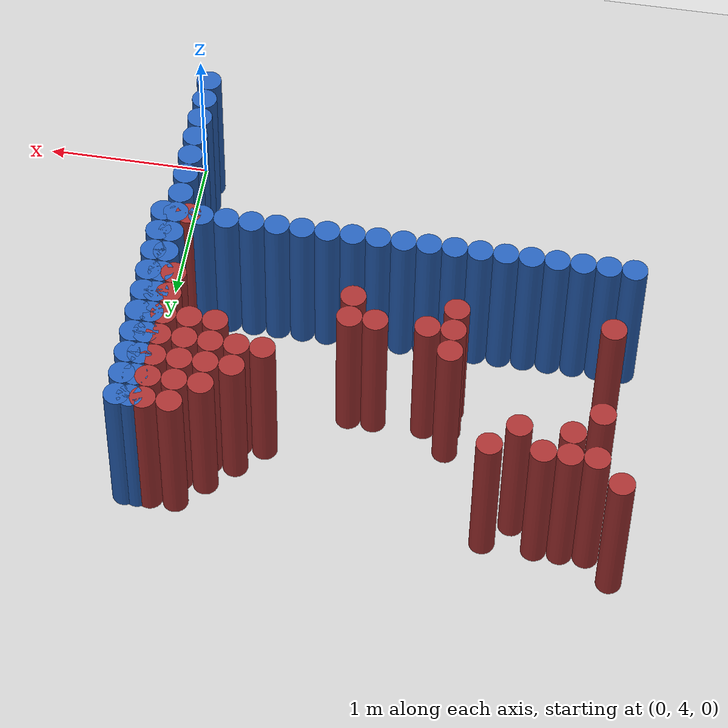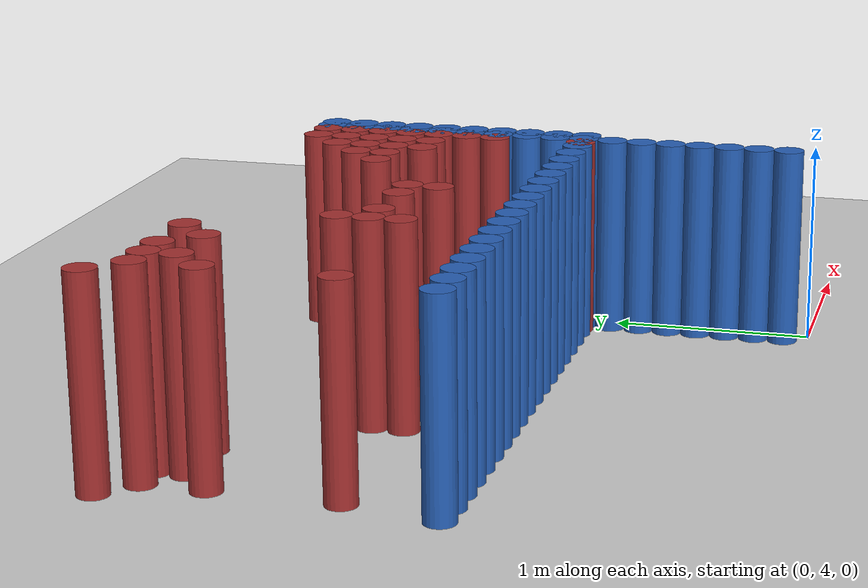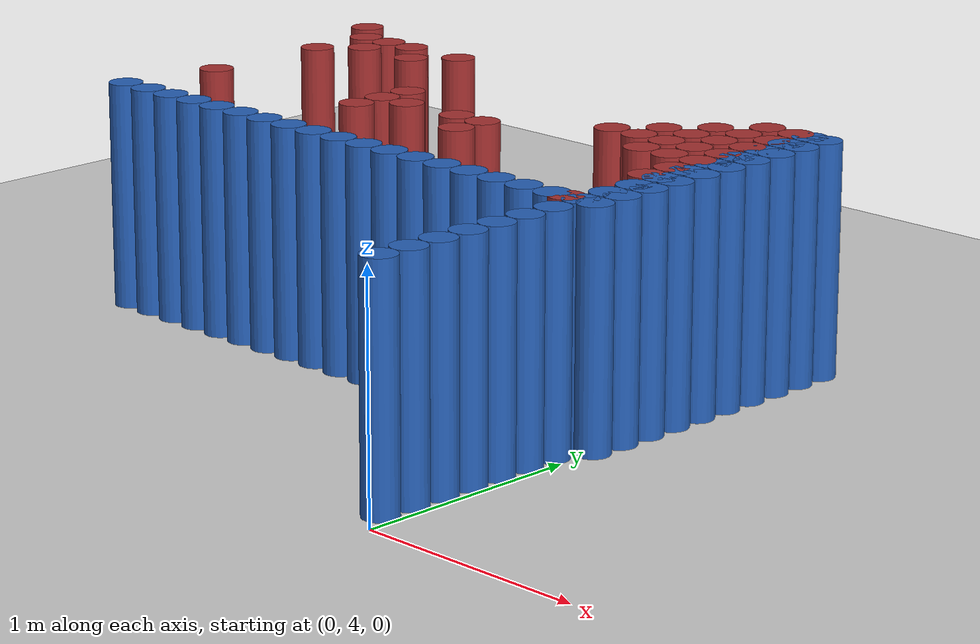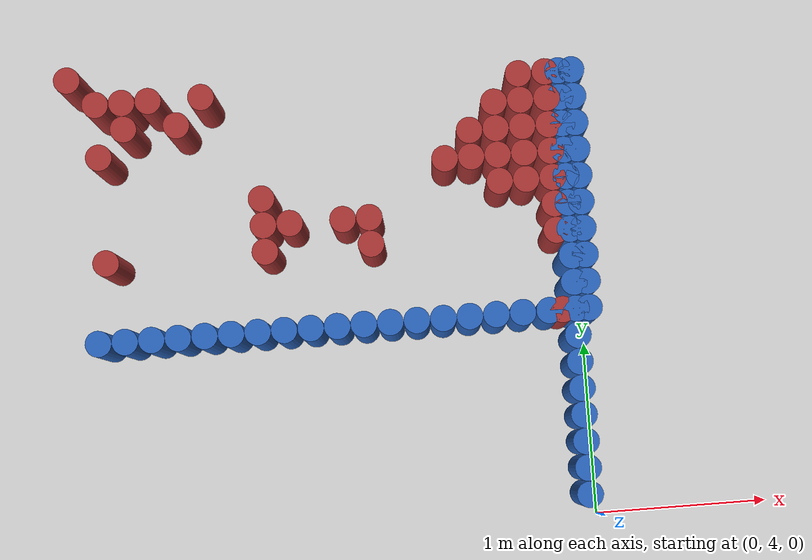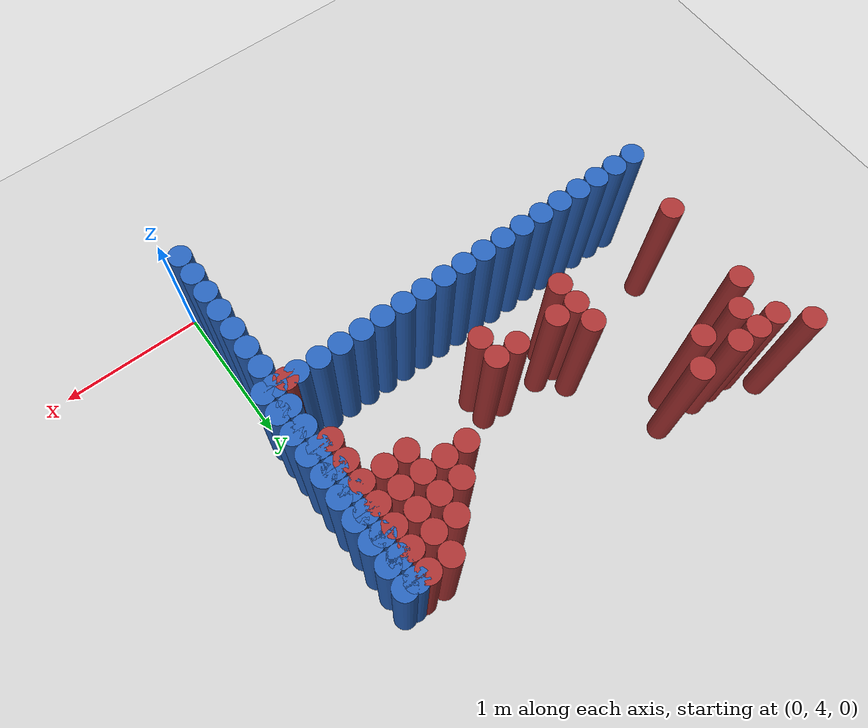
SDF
<sdf version="1.6">
 <world name="barn_world">
  <model name="ground_plane">
   <static>1</static>
   <link name="link">
    <collision name="collision">
     <geometry><plane><normal>0 0 1</normal><size>100 100</size></plane></geometry>
    </collision>
    <visual name="visual">
     <geometry><plane><normal>0 0 1</normal><size>100 100</size></plane></geometry>
     <material>
      <script><uri>file://media/materials/scripts/gazebo.material</uri><name>Gazebo/Grey</name></script>
     </material>
    </visual>
   </link>
  </model>
  <model name="unit_cylinder_82">
   <static>1</static>
   <pose>-0.0750 4.1250 0.5 0 0 0</pose>
   <link name="link">
    <collision name="collision">
     <geometry><cylinder><radius>0.075</radius><length>1</length></cylinder></geometry>
    </collision>
    <visual name="visual">
     <geometry><cylinder><radius>0.075</radius><length>1</length></cylinder></geometry>
     <material><ambient>0.152 0.379 0.72 1</ambient><diffuse>0.152 0.379 0.72 1</diffuse></material>
    </visual>
   </link>
  </model>
  <model name="unit_cylinder_84">
   <static>1</static>
   <pose>-0.0750 4.2750 0.5 0 0 0</pose>
   <link name="link">
    <collision name="collision">
     <geometry><cylinder><radius>0.075</radius><length>1</length></cylinder></geometry>
    </collision>
    <visual name="visual">
     <geometry><cylinder><radius>0.075</radius><length>1</length></cylinder></geometry>
     <material><ambient>0.152 0.379 0.72 1</ambient><diffuse>0.152 0.379 0.72 1</diffuse></material>
    </visual>
   </link>
  </model>
  <model name="unit_cylinder_86">
   <static>1</static>
   <pose>-0.0750 4.4250 0.5 0 0 0</pose>
   <link name="link">
    <collision name="collision">
     <geometry><cylinder><radius>0.075</radius><length>1</length></cylinder></geometry>
    </collision>
    <visual name="visual">
     <geometry><cylinder><radius>0.075</radius><length>1</length></cylinder></geometry>
     <material><ambient>0.152 0.379 0.72 1</ambient><diffuse>0.152 0.379 0.72 1</diffuse></material>
    </visual>
   </link>
  </model>
  <model name="unit_cylinder_88">
   <static>1</static>
   <pose>-0.0750 4.5750 0.5 0 0 0</pose>
   <link name="link">
    <collision name="collision">
     <geometry><cylinder><radius>0.075</radius><length>1</length></cylinder></geometry>
    </collision>
    <visual name="visual">
     <geometry><cylinder><radius>0.075</radius><length>1</length></cylinder></geometry>
     <material><ambient>0.152 0.379 0.72 1</ambient><diffuse>0.152 0.379 0.72 1</diffuse></material>
    </visual>
   </link>
  </model>
  <model name="unit_cylinder_90">
   <static>1</static>
   <pose>-0.0750 4.7250 0.5 0 0 0</pose>
   <link name="link">
    <collision name="collision">
     <geometry><cylinder><radius>0.075</radius><length>1</length></cylinder></geometry>
    </collision>
    <visual name="visual">
     <geometry><cylinder><radius>0.075</radius><length>1</length></cylinder></geometry>
     <material><ambient>0.152 0.379 0.72 1</ambient><diffuse>0.152 0.379 0.72 1</diffuse></material>
    </visual>
   </link>
  </model>
  <model name="unit_cylinder_92">
   <static>1</static>
   <pose>-0.0750 4.8750 0.5 0 0 0</pose>
   <link name="link">
    <collision name="collision">
     <geometry><cylinder><radius>0.075</radius><length>1</length></cylinder></geometry>
    </collision>
    <visual name="visual">
     <geometry><cylinder><radius>0.075</radius><length>1</length></cylinder></geometry>
     <material><ambient>0.152 0.379 0.72 1</ambient><diffuse>0.152 0.379 0.72 1</diffuse></material>
    </visual>
   </link>
  </model>
  <model name="unit_cylinder_94">
   <static>1</static>
   <pose>-0.0750 5.0250 0.5 0 0 0</pose>
   <link name="link">
    <collision name="collision">
     <geometry><cylinder><radius>0.075</radius><length>1</length></cylinder></geometry>
    </collision>
    <visual name="visual">
     <geometry><cylinder><radius>0.075</radius><length>1</length></cylinder></geometry>
     <material><ambient>0.152 0.379 0.72 1</ambient><diffuse>0.152 0.379 0.72 1</diffuse></material>
    </visual>
   </link>
  </model>
  <model name="unit_cylinder_96">
   <static>1</static>
   <pose>-0.0750 5.1750 0.5 0 0 0</pose>
   <link name="link">
    <collision name="collision">
     <geometry><cylinder><radius>0.075</radius><length>1</length></cylinder></geometry>
    </collision>
    <visual name="visual">
     <geometry><cylinder><radius>0.075</radius><length>1</length></cylinder></geometry>
     <material><ambient>0.152 0.379 0.72 1</ambient><diffuse>0.152 0.379 0.72 1</diffuse></material>
    </visual>
   </link>
  </model>
  <model name="unit_cylinder_97">
   <static>1</static>
   <pose>-0.2250 5.1750 0.5 0 0 0</pose>
   <link name="link">
    <collision name="collision">
     <geometry><cylinder><radius>0.075</radius><length>1</length></cylinder></geometry>
    </collision>
    <visual name="visual">
     <geometry><cylinder><radius>0.075</radius><length>1</length></cylinder></geometry>
     <material><ambient>0.152 0.379 0.72 1</ambient><diffuse>0.152 0.379 0.72 1</diffuse></material>
    </visual>
   </link>
  </model>
  <model name="unit_cylinder_98">
   <static>1</static>
   <pose>-0.3750 5.1750 0.5 0 0 0</pose>
   <link name="link">
    <collision name="collision">
     <geometry><cylinder><radius>0.075</radius><length>1</length></cylinder></geometry>
    </collision>
    <visual name="visual">
     <geometry><cylinder><radius>0.075</radius><length>1</length></cylinder></geometry>
     <material><ambient>0.152 0.379 0.72 1</ambient><diffuse>0.152 0.379 0.72 1</diffuse></material>
    </visual>
   </link>
  </model>
  <model name="unit_cylinder_99">
   <static>1</static>
   <pose>-0.5250 5.1750 0.5 0 0 0</pose>
   <link name="link">
    <collision name="collision">
     <geometry><cylinder><radius>0.075</radius><length>1</length></cylinder></geometry>
    </collision>
    <visual name="visual">
     <geometry><cylinder><radius>0.075</radius><length>1</length></cylinder></geometry>
     <material><ambient>0.152 0.379 0.72 1</ambient><diffuse>0.152 0.379 0.72 1</diffuse></material>
    </visual>
   </link>
  </model>
  <model name="unit_cylinder_100">
   <static>1</static>
   <pose>-0.6750 5.1750 0.5 0 0 0</pose>
   <link name="link">
    <collision name="collision">
     <geometry><cylinder><radius>0.075</radius><length>1</length></cylinder></geometry>
    </collision>
    <visual name="visual">
     <geometry><cylinder><radius>0.075</radius><length>1</length></cylinder></geometry>
     <material><ambient>0.152 0.379 0.72 1</ambient><diffuse>0.152 0.379 0.72 1</diffuse></material>
    </visual>
   </link>
  </model>
  <model name="unit_cylinder_101">
   <static>1</static>
   <pose>-0.8250 5.1750 0.5 0 0 0</pose>
   <link name="link">
    <collision name="collision">
     <geometry><cylinder><radius>0.075</radius><length>1</length></cylinder></geometry>
    </collision>
    <visual name="visual">
     <geometry><cylinder><radius>0.075</radius><length>1</length></cylinder></geometry>
     <material><ambient>0.152 0.379 0.72 1</ambient><diffuse>0.152 0.379 0.72 1</diffuse></material>
    </visual>
   </link>
  </model>
  <model name="unit_cylinder_102">
   <static>1</static>
   <pose>-0.9750 5.1750 0.5 0 0 0</pose>
   <link name="link">
    <collision name="collision">
     <geometry><cylinder><radius>0.075</radius><length>1</length></cylinder></geometry>
    </collision>
    <visual name="visual">
     <geometry><cylinder><radius>0.075</radius><length>1</length></cylinder></geometry>
     <material><ambient>0.152 0.379 0.72 1</ambient><diffuse>0.152 0.379 0.72 1</diffuse></material>
    </visual>
   </link>
  </model>
  <model name="unit_cylinder_103">
   <static>1</static>
   <pose>-1.1250 5.1750 0.5 0 0 0</pose>
   <link name="link">
    <collision name="collision">
     <geometry><cylinder><radius>0.075</radius><length>1</length></cylinder></geometry>
    </collision>
    <visual name="visual">
     <geometry><cylinder><radius>0.075</radius><length>1</length></cylinder></geometry>
     <material><ambient>0.152 0.379 0.72 1</ambient><diffuse>0.152 0.379 0.72 1</diffuse></material>
    </visual>
   </link>
  </model>
  <model name="unit_cylinder_104">
   <static>1</static>
   <pose>-1.2750 5.1750 0.5 0 0 0</pose>
   <link name="link">
    <collision name="collision">
     <geometry><cylinder><radius>0.075</radius><length>1</length></cylinder></geometry>
    </collision>
    <visual name="visual">
     <geometry><cylinder><radius>0.075</radius><length>1</length></cylinder></geometry>
     <material><ambient>0.152 0.379 0.72 1</ambient><diffuse>0.152 0.379 0.72 1</diffuse></material>
    </visual>
   </link>
  </model>
  <model name="unit_cylinder_105">
   <static>1</static>
   <pose>-1.4250 5.1750 0.5 0 0 0</pose>
   <link name="link">
    <collision name="collision">
     <geometry><cylinder><radius>0.075</radius><length>1</length></cylinder></geometry>
    </collision>
    <visual name="visual">
     <geometry><cylinder><radius>0.075</radius><length>1</length></cylinder></geometry>
     <material><ambient>0.152 0.379 0.72 1</ambient><diffuse>0.152 0.379 0.72 1</diffuse></material>
    </visual>
   </link>
  </model>
  <model name="unit_cylinder_106">
   <static>1</static>
   <pose>-1.5750 5.1750 0.5 0 0 0</pose>
   <link name="link">
    <collision name="collision">
     <geometry><cylinder><radius>0.075</radius><length>1</length></cylinder></geometry>
    </collision>
    <visual name="visual">
     <geometry><cylinder><radius>0.075</radius><length>1</length></cylinder></geometry>
     <material><ambient>0.152 0.379 0.72 1</ambient><diffuse>0.152 0.379 0.72 1</diffuse></material>
    </visual>
   </link>
  </model>
  <model name="unit_cylinder_107">
   <static>1</static>
   <pose>-1.7250 5.1750 0.5 0 0 0</pose>
   <link name="link">
    <collision name="collision">
     <geometry><cylinder><radius>0.075</radius><length>1</length></cylinder></geometry>
    </collision>
    <visual name="visual">
     <geometry><cylinder><radius>0.075</radius><length>1</length></cylinder></geometry>
     <material><ambient>0.152 0.379 0.72 1</ambient><diffuse>0.152 0.379 0.72 1</diffuse></material>
    </visual>
   </link>
  </model>
  <model name="unit_cylinder_108">
   <static>1</static>
   <pose>-1.8750 5.1750 0.5 0 0 0</pose>
   <link name="link">
    <collision name="collision">
     <geometry><cylinder><radius>0.075</radius><length>1</length></cylinder></geometry>
    </collision>
    <visual name="visual">
     <geometry><cylinder><radius>0.075</radius><length>1</length></cylinder></geometry>
     <material><ambient>0.152 0.379 0.72 1</ambient><diffuse>0.152 0.379 0.72 1</diffuse></material>
    </visual>
   </link>
  </model>
  <model name="unit_cylinder_109">
   <static>1</static>
   <pose>-2.0250 5.1750 0.5 0 0 0</pose>
   <link name="link">
    <collision name="collision">
     <geometry><cylinder><radius>0.075</radius><length>1</length></cylinder></geometry>
    </collision>
    <visual name="visual">
     <geometry><cylinder><radius>0.075</radius><length>1</length></cylinder></geometry>
     <material><ambient>0.152 0.379 0.72 1</ambient><diffuse>0.152 0.379 0.72 1</diffuse></material>
    </visual>
   </link>
  </model>
  <model name="unit_cylinder_110">
   <static>1</static>
   <pose>-2.1750 5.1750 0.5 0 0 0</pose>
   <link name="link">
    <collision name="collision">
     <geometry><cylinder><radius>0.075</radius><length>1</length></cylinder></geometry>
    </collision>
    <visual name="visual">
     <geometry><cylinder><radius>0.075</radius><length>1</length></cylinder></geometry>
     <material><ambient>0.152 0.379 0.72 1</ambient><diffuse>0.152 0.379 0.72 1</diffuse></material>
    </visual>
   </link>
  </model>
  <model name="unit_cylinder_111">
   <static>1</static>
   <pose>-2.3250 5.1750 0.5 0 0 0</pose>
   <link name="link">
    <collision name="collision">
     <geometry><cylinder><radius>0.075</radius><length>1</length></cylinder></geometry>
    </collision>
    <visual name="visual">
     <geometry><cylinder><radius>0.075</radius><length>1</length></cylinder></geometry>
     <material><ambient>0.152 0.379 0.72 1</ambient><diffuse>0.152 0.379 0.72 1</diffuse></material>
    </visual>
   </link>
  </model>
  <model name="unit_cylinder_112">
   <static>1</static>
   <pose>-2.4750 5.1750 0.5 0 0 0</pose>
   <link name="link">
    <collision name="collision">
     <geometry><cylinder><radius>0.075</radius><length>1</length></cylinder></geometry>
    </collision>
    <visual name="visual">
     <geometry><cylinder><radius>0.075</radius><length>1</length></cylinder></geometry>
     <material><ambient>0.152 0.379 0.72 1</ambient><diffuse>0.152 0.379 0.72 1</diffuse></material>
    </visual>
   </link>
  </model>
  <model name="unit_cylinder_113">
   <static>1</static>
   <pose>-2.6250 5.1750 0.5 0 0 0</pose>
   <link name="link">
    <collision name="collision">
     <geometry><cylinder><radius>0.075</radius><length>1</length></cylinder></geometry>
    </collision>
    <visual name="visual">
     <geometry><cylinder><radius>0.075</radius><length>1</length></cylinder></geometry>
     <material><ambient>0.152 0.379 0.72 1</ambient><diffuse>0.152 0.379 0.72 1</diffuse></material>
    </visual>
   </link>
  </model>
  <model name="unit_cylinder_114">
   <static>1</static>
   <pose>-2.7750 5.1750 0.5 0 0 0</pose>
   <link name="link">
    <collision name="collision">
     <geometry><cylinder><radius>0.075</radius><length>1</length></cylinder></geometry>
    </collision>
    <visual name="visual">
     <geometry><cylinder><radius>0.075</radius><length>1</length></cylinder></geometry>
     <material><ambient>0.152 0.379 0.72 1</ambient><diffuse>0.152 0.379 0.72 1</diffuse></material>
    </visual>
   </link>
  </model>
  <model name="unit_cylinder_243">
   <static>1</static>
   <pose>-2.8500 6.6750 0.5 0 0 0</pose>
   <link name="link">
    <collision name="collision">
     <geometry><cylinder><radius>0.075</radius><length>1</length></cylinder></geometry>
    </collision>
    <visual name="visual">
     <geometry><cylinder><radius>0.075</radius><length>1</length></cylinder></geometry>
     <material><ambient>0.648 0.192 0.192 1</ambient><diffuse>0.648 0.192 0.192 1</diffuse></material>
    </visual>
   </link>
  </model>
  <model name="unit_cylinder_249">
   <static>1</static>
   <pose>-2.7000 5.6250 0.5 0 0 0</pose>
   <link name="link">
    <collision name="collision">
     <geometry><cylinder><radius>0.075</radius><length>1</length></cylinder></geometry>
    </collision>
    <visual name="visual">
     <geometry><cylinder><radius>0.075</radius><length>1</length></cylinder></geometry>
     <material><ambient>0.648 0.192 0.192 1</ambient><diffuse>0.648 0.192 0.192 1</diffuse></material>
    </visual>
   </link>
  </model>
  <model name="unit_cylinder_250">
   <static>1</static>
   <pose>-2.7000 6.2250 0.5 0 0 0</pose>
   <link name="link">
    <collision name="collision">
     <geometry><cylinder><radius>0.075</radius><length>1</length></cylinder></geometry>
    </collision>
    <visual name="visual">
     <geometry><cylinder><radius>0.075</radius><length>1</length></cylinder></geometry>
     <material><ambient>0.648 0.192 0.192 1</ambient><diffuse>0.648 0.192 0.192 1</diffuse></material>
    </visual>
   </link>
  </model>
  <model name="unit_cylinder_251">
   <static>1</static>
   <pose>-2.7000 6.5250 0.5 0 0 0</pose>
   <link name="link">
    <collision name="collision">
     <geometry><cylinder><radius>0.075</radius><length>1</length></cylinder></geometry>
    </collision>
    <visual name="visual">
     <geometry><cylinder><radius>0.075</radius><length>1</length></cylinder></geometry>
     <material><ambient>0.648 0.192 0.192 1</ambient><diffuse>0.648 0.192 0.192 1</diffuse></material>
    </visual>
   </link>
  </model>
  <model name="unit_cylinder_257">
   <static>1</static>
   <pose>-2.5500 6.3750 0.5 0 0 0</pose>
   <link name="link">
    <collision name="collision">
     <geometry><cylinder><radius>0.075</radius><length>1</length></cylinder></geometry>
    </collision>
    <visual name="visual">
     <geometry><cylinder><radius>0.075</radius><length>1</length></cylinder></geometry>
     <material><ambient>0.648 0.192 0.192 1</ambient><diffuse>0.648 0.192 0.192 1</diffuse></material>
    </visual>
   </link>
  </model>
  <model name="unit_cylinder_258">
   <static>1</static>
   <pose>-2.5500 6.5250 0.5 0 0 0</pose>
   <link name="link">
    <collision name="collision">
     <geometry><cylinder><radius>0.075</radius><length>1</length></cylinder></geometry>
    </collision>
    <visual name="visual">
     <geometry><cylinder><radius>0.075</radius><length>1</length></cylinder></geometry>
     <material><ambient>0.648 0.192 0.192 1</ambient><diffuse>0.648 0.192 0.192 1</diffuse></material>
    </visual>
   </link>
  </model>
  <model name="unit_cylinder_265">
   <static>1</static>
   <pose>-2.4000 6.5250 0.5 0 0 0</pose>
   <link name="link">
    <collision name="collision">
     <geometry><cylinder><radius>0.075</radius><length>1</length></cylinder></geometry>
    </collision>
    <visual name="visual">
     <geometry><cylinder><radius>0.075</radius><length>1</length></cylinder></geometry>
     <material><ambient>0.648 0.192 0.192 1</ambient><diffuse>0.648 0.192 0.192 1</diffuse></material>
    </visual>
   </link>
  </model>
  <model name="unit_cylinder_271">
   <static>1</static>
   <pose>-2.2500 6.3750 0.5 0 0 0</pose>
   <link name="link">
    <collision name="collision">
     <geometry><cylinder><radius>0.075</radius><length>1</length></cylinder></geometry>
    </collision>
    <visual name="visual">
     <geometry><cylinder><radius>0.075</radius><length>1</length></cylinder></geometry>
     <material><ambient>0.648 0.192 0.192 1</ambient><diffuse>0.648 0.192 0.192 1</diffuse></material>
    </visual>
   </link>
  </model>
  <model name="unit_cylinder_276">
   <static>1</static>
   <pose>-2.1000 6.5250 0.5 0 0 0</pose>
   <link name="link">
    <collision name="collision">
     <geometry><cylinder><radius>0.075</radius><length>1</length></cylinder></geometry>
    </collision>
    <visual name="visual">
     <geometry><cylinder><radius>0.075</radius><length>1</length></cylinder></geometry>
     <material><ambient>0.648 0.192 0.192 1</ambient><diffuse>0.648 0.192 0.192 1</diffuse></material>
    </visual>
   </link>
  </model>
  <model name="unit_cylinder_288">
   <static>1</static>
   <pose>-1.8000 5.6250 0.5 0 0 0</pose>
   <link name="link">
    <collision name="collision">
     <geometry><cylinder><radius>0.075</radius><length>1</length></cylinder></geometry>
    </collision>
    <visual name="visual">
     <geometry><cylinder><radius>0.075</radius><length>1</length></cylinder></geometry>
     <material><ambient>0.648 0.192 0.192 1</ambient><diffuse>0.648 0.192 0.192 1</diffuse></material>
    </visual>
   </link>
  </model>
  <model name="unit_cylinder_289">
   <static>1</static>
   <pose>-1.8000 5.7750 0.5 0 0 0</pose>
   <link name="link">
    <collision name="collision">
     <geometry><cylinder><radius>0.075</radius><length>1</length></cylinder></geometry>
    </collision>
    <visual name="visual">
     <geometry><cylinder><radius>0.075</radius><length>1</length></cylinder></geometry>
     <material><ambient>0.648 0.192 0.192 1</ambient><diffuse>0.648 0.192 0.192 1</diffuse></material>
    </visual>
   </link>
  </model>
  <model name="unit_cylinder_290">
   <static>1</static>
   <pose>-1.8000 5.9250 0.5 0 0 0</pose>
   <link name="link">
    <collision name="collision">
     <geometry><cylinder><radius>0.075</radius><length>1</length></cylinder></geometry>
    </collision>
    <visual name="visual">
     <geometry><cylinder><radius>0.075</radius><length>1</length></cylinder></geometry>
     <material><ambient>0.648 0.192 0.192 1</ambient><diffuse>0.648 0.192 0.192 1</diffuse></material>
    </visual>
   </link>
  </model>
  <model name="unit_cylinder_295">
   <static>1</static>
   <pose>-1.6500 5.7750 0.5 0 0 0</pose>
   <link name="link">
    <collision name="collision">
     <geometry><cylinder><radius>0.075</radius><length>1</length></cylinder></geometry>
    </collision>
    <visual name="visual">
     <geometry><cylinder><radius>0.075</radius><length>1</length></cylinder></geometry>
     <material><ambient>0.648 0.192 0.192 1</ambient><diffuse>0.648 0.192 0.192 1</diffuse></material>
    </visual>
   </link>
  </model>
  <model name="unit_cylinder_305">
   <static>1</static>
   <pose>-1.3500 5.7750 0.5 0 0 0</pose>
   <link name="link">
    <collision name="collision">
     <geometry><cylinder><radius>0.075</radius><length>1</length></cylinder></geometry>
    </collision>
    <visual name="visual">
     <geometry><cylinder><radius>0.075</radius><length>1</length></cylinder></geometry>
     <material><ambient>0.648 0.192 0.192 1</ambient><diffuse>0.648 0.192 0.192 1</diffuse></material>
    </visual>
   </link>
  </model>
  <model name="unit_cylinder_314">
   <static>1</static>
   <pose>-1.2000 5.6250 0.5 0 0 0</pose>
   <link name="link">
    <collision name="collision">
     <geometry><cylinder><radius>0.075</radius><length>1</length></cylinder></geometry>
    </collision>
    <visual name="visual">
     <geometry><cylinder><radius>0.075</radius><length>1</length></cylinder></geometry>
     <material><ambient>0.648 0.192 0.192 1</ambient><diffuse>0.648 0.192 0.192 1</diffuse></material>
    </visual>
   </link>
  </model>
  <model name="unit_cylinder_315">
   <static>1</static>
   <pose>-1.2000 5.7750 0.5 0 0 0</pose>
   <link name="link">
    <collision name="collision">
     <geometry><cylinder><radius>0.075</radius><length>1</length></cylinder></geometry>
    </collision>
    <visual name="visual">
     <geometry><cylinder><radius>0.075</radius><length>1</length></cylinder></geometry>
     <material><ambient>0.648 0.192 0.192 1</ambient><diffuse>0.648 0.192 0.192 1</diffuse></material>
    </visual>
   </link>
  </model>
  <model name="unit_cylinder_328">
   <static>1</static>
   <pose>-0.7500 6.0750 0.5 0 0 0</pose>
   <link name="link">
    <collision name="collision">
     <geometry><cylinder><radius>0.075</radius><length>1</length></cylinder></geometry>
    </collision>
    <visual name="visual">
     <geometry><cylinder><radius>0.075</radius><length>1</length></cylinder></geometry>
     <material><ambient>0.648 0.192 0.192 1</ambient><diffuse>0.648 0.192 0.192 1</diffuse></material>
    </visual>
   </link>
  </model>
  <model name="unit_cylinder_331">
   <static>1</static>
   <pose>-0.6000 6.0750 0.5 0 0 0</pose>
   <link name="link">
    <collision name="collision">
     <geometry><cylinder><radius>0.075</radius><length>1</length></cylinder></geometry>
    </collision>
    <visual name="visual">
     <geometry><cylinder><radius>0.075</radius><length>1</length></cylinder></geometry>
     <material><ambient>0.648 0.192 0.192 1</ambient><diffuse>0.648 0.192 0.192 1</diffuse></material>
    </visual>
   </link>
  </model>
  <model name="unit_cylinder_332">
   <static>1</static>
   <pose>-0.6000 6.2250 0.5 0 0 0</pose>
   <link name="link">
    <collision name="collision">
     <geometry><cylinder><radius>0.075</radius><length>1</length></cylinder></geometry>
    </collision>
    <visual name="visual">
     <geometry><cylinder><radius>0.075</radius><length>1</length></cylinder></geometry>
     <material><ambient>0.648 0.192 0.192 1</ambient><diffuse>0.648 0.192 0.192 1</diffuse></material>
    </visual>
   </link>
  </model>
  <model name="unit_cylinder_334">
   <static>1</static>
   <pose>-0.4500 5.9250 0.5 0 0 0</pose>
   <link name="link">
    <collision name="collision">
     <geometry><cylinder><radius>0.075</radius><length>1</length></cylinder></geometry>
    </collision>
    <visual name="visual">
     <geometry><cylinder><radius>0.075</radius><length>1</length></cylinder></geometry>
     <material><ambient>0.648 0.192 0.192 1</ambient><diffuse>0.648 0.192 0.192 1</diffuse></material>
    </visual>
   </link>
  </model>
  <model name="unit_cylinder_335">
   <static>1</static>
   <pose>-0.4500 6.0750 0.5 0 0 0</pose>
   <link name="link">
    <collision name="collision">
     <geometry><cylinder><radius>0.075</radius><length>1</length></cylinder></geometry>
    </collision>
    <visual name="visual">
     <geometry><cylinder><radius>0.075</radius><length>1</length></cylinder></geometry>
     <material><ambient>0.648 0.192 0.192 1</ambient><diffuse>0.648 0.192 0.192 1</diffuse></material>
    </visual>
   </link>
  </model>
  <model name="unit_cylinder_336">
   <static>1</static>
   <pose>-0.4500 6.2250 0.5 0 0 0</pose>
   <link name="link">
    <collision name="collision">
     <geometry><cylinder><radius>0.075</radius><length>1</length></cylinder></geometry>
    </collision>
    <visual name="visual">
     <geometry><cylinder><radius>0.075</radius><length>1</length></cylinder></geometry>
     <material><ambient>0.648 0.192 0.192 1</ambient><diffuse>0.648 0.192 0.192 1</diffuse></material>
    </visual>
   </link>
  </model>
  <model name="unit_cylinder_337">
   <static>1</static>
   <pose>-0.4500 6.3750 0.5 0 0 0</pose>
   <link name="link">
    <collision name="collision">
     <geometry><cylinder><radius>0.075</radius><length>1</length></cylinder></geometry>
    </collision>
    <visual name="visual">
     <geometry><cylinder><radius>0.075</radius><length>1</length></cylinder></geometry>
     <material><ambient>0.648 0.192 0.192 1</ambient><diffuse>0.648 0.192 0.192 1</diffuse></material>
    </visual>
   </link>
  </model>
  <model name="unit_cylinder_339">
   <static>1</static>
   <pose>-0.3000 5.9250 0.5 0 0 0</pose>
   <link name="link">
    <collision name="collision">
     <geometry><cylinder><radius>0.075</radius><length>1</length></cylinder></geometry>
    </collision>
    <visual name="visual">
     <geometry><cylinder><radius>0.075</radius><length>1</length></cylinder></geometry>
     <material><ambient>0.648 0.192 0.192 1</ambient><diffuse>0.648 0.192 0.192 1</diffuse></material>
    </visual>
   </link>
  </model>
  <model name="unit_cylinder_340">
   <static>1</static>
   <pose>-0.3000 6.0750 0.5 0 0 0</pose>
   <link name="link">
    <collision name="collision">
     <geometry><cylinder><radius>0.075</radius><length>1</length></cylinder></geometry>
    </collision>
    <visual name="visual">
     <geometry><cylinder><radius>0.075</radius><length>1</length></cylinder></geometry>
     <material><ambient>0.648 0.192 0.192 1</ambient><diffuse>0.648 0.192 0.192 1</diffuse></material>
    </visual>
   </link>
  </model>
  <model name="unit_cylinder_341">
   <static>1</static>
   <pose>-0.3000 6.2250 0.5 0 0 0</pose>
   <link name="link">
    <collision name="collision">
     <geometry><cylinder><radius>0.075</radius><length>1</length></cylinder></geometry>
    </collision>
    <visual name="visual">
     <geometry><cylinder><radius>0.075</radius><length>1</length></cylinder></geometry>
     <material><ambient>0.648 0.192 0.192 1</ambient><diffuse>0.648 0.192 0.192 1</diffuse></material>
    </visual>
   </link>
  </model>
  <model name="unit_cylinder_342">
   <static>1</static>
   <pose>-0.3000 6.3750 0.5 0 0 0</pose>
   <link name="link">
    <collision name="collision">
     <geometry><cylinder><radius>0.075</radius><length>1</length></cylinder></geometry>
    </collision>
    <visual name="visual">
     <geometry><cylinder><radius>0.075</radius><length>1</length></cylinder></geometry>
     <material><ambient>0.648 0.192 0.192 1</ambient><diffuse>0.648 0.192 0.192 1</diffuse></material>
    </visual>
   </link>
  </model>
  <model name="unit_cylinder_343">
   <static>1</static>
   <pose>-0.3000 6.5250 0.5 0 0 0</pose>
   <link name="link">
    <collision name="collision">
     <geometry><cylinder><radius>0.075</radius><length>1</length></cylinder></geometry>
    </collision>
    <visual name="visual">
     <geometry><cylinder><radius>0.075</radius><length>1</length></cylinder></geometry>
     <material><ambient>0.648 0.192 0.192 1</ambient><diffuse>0.648 0.192 0.192 1</diffuse></material>
    </visual>
   </link>
  </model>
  <model name="unit_cylinder_349">
   <static>1</static>
   <pose>-0.1500 5.1750 0.5 0 0 0</pose>
   <link name="link">
    <collision name="collision">
     <geometry><cylinder><radius>0.075</radius><length>1</length></cylinder></geometry>
    </collision>
    <visual name="visual">
     <geometry><cylinder><radius>0.075</radius><length>1</length></cylinder></geometry>
     <material><ambient>0.648 0.192 0.192 1</ambient><diffuse>0.648 0.192 0.192 1</diffuse></material>
    </visual>
   </link>
  </model>
  <model name="unit_cylinder_350">
   <static>1</static>
   <pose>-0.1500 5.6250 0.5 0 0 0</pose>
   <link name="link">
    <collision name="collision">
     <geometry><cylinder><radius>0.075</radius><length>1</length></cylinder></geometry>
    </collision>
    <visual name="visual">
     <geometry><cylinder><radius>0.075</radius><length>1</length></cylinder></geometry>
     <material><ambient>0.648 0.192 0.192 1</ambient><diffuse>0.648 0.192 0.192 1</diffuse></material>
    </visual>
   </link>
  </model>
  <model name="unit_cylinder_351">
   <static>1</static>
   <pose>-0.1500 5.7750 0.5 0 0 0</pose>
   <link name="link">
    <collision name="collision">
     <geometry><cylinder><radius>0.075</radius><length>1</length></cylinder></geometry>
    </collision>
    <visual name="visual">
     <geometry><cylinder><radius>0.075</radius><length>1</length></cylinder></geometry>
     <material><ambient>0.648 0.192 0.192 1</ambient><diffuse>0.648 0.192 0.192 1</diffuse></material>
    </visual>
   </link>
  </model>
  <model name="unit_cylinder_352">
   <static>1</static>
   <pose>-0.1500 5.9250 0.5 0 0 0</pose>
   <link name="link">
    <collision name="collision">
     <geometry><cylinder><radius>0.075</radius><length>1</length></cylinder></geometry>
    </collision>
    <visual name="visual">
     <geometry><cylinder><radius>0.075</radius><length>1</length></cylinder></geometry>
     <material><ambient>0.648 0.192 0.192 1</ambient><diffuse>0.648 0.192 0.192 1</diffuse></material>
    </visual>
   </link>
  </model>
  <model name="unit_cylinder_353">
   <static>1</static>
   <pose>-0.1500 6.0750 0.5 0 0 0</pose>
   <link name="link">
    <collision name="collision">
     <geometry><cylinder><radius>0.075</radius><length>1</length></cylinder></geometry>
    </collision>
    <visual name="visual">
     <geometry><cylinder><radius>0.075</radius><length>1</length></cylinder></geometry>
     <material><ambient>0.648 0.192 0.192 1</ambient><diffuse>0.648 0.192 0.192 1</diffuse></material>
    </visual>
   </link>
  </model>
  <model name="unit_cylinder_354">
   <static>1</static>
   <pose>-0.1500 6.2250 0.5 0 0 0</pose>
   <link name="link">
    <collision name="collision">
     <geometry><cylinder><radius>0.075</radius><length>1</length></cylinder></geometry>
    </collision>
    <visual name="visual">
     <geometry><cylinder><radius>0.075</radius><length>1</length></cylinder></geometry>
     <material><ambient>0.648 0.192 0.192 1</ambient><diffuse>0.648 0.192 0.192 1</diffuse></material>
    </visual>
   </link>
  </model>
  <model name="unit_cylinder_355">
   <static>1</static>
   <pose>-0.1500 6.3750 0.5 0 0 0</pose>
   <link name="link">
    <collision name="collision">
     <geometry><cylinder><radius>0.075</radius><length>1</length></cylinder></geometry>
    </collision>
    <visual name="visual">
     <geometry><cylinder><radius>0.075</radius><length>1</length></cylinder></geometry>
     <material><ambient>0.648 0.192 0.192 1</ambient><diffuse>0.648 0.192 0.192 1</diffuse></material>
    </visual>
   </link>
  </model>
  <model name="unit_cylinder_356">
   <static>1</static>
   <pose>-0.1500 6.5250 0.5 0 0 0</pose>
   <link name="link">
    <collision name="collision">
     <geometry><cylinder><radius>0.075</radius><length>1</length></cylinder></geometry>
    </collision>
    <visual name="visual">
     <geometry><cylinder><radius>0.075</radius><length>1</length></cylinder></geometry>
     <material><ambient>0.648 0.192 0.192 1</ambient><diffuse>0.648 0.192 0.192 1</diffuse></material>
    </visual>
   </link>
  </model>
  <model name="unit_cylinder_371">
   <static>1</static>
   <pose>0.0000 5.1750 0.5 0 0 0</pose>
   <link name="link">
    <collision name="collision">
     <geometry><cylinder><radius>0.075</radius><length>1</length></cylinder></geometry>
    </collision>
    <visual name="visual">
     <geometry><cylinder><radius>0.075</radius><length>1</length></cylinder></geometry>
     <material><ambient>0.152 0.379 0.72 1</ambient><diffuse>0.152 0.379 0.72 1</diffuse></material>
    </visual>
   </link>
  </model>
  <model name="unit_cylinder_372">
   <static>1</static>
   <pose>0.0000 5.3250 0.5 0 0 0</pose>
   <link name="link">
    <collision name="collision">
     <geometry><cylinder><radius>0.075</radius><length>1</length></cylinder></geometry>
    </collision>
    <visual name="visual">
     <geometry><cylinder><radius>0.075</radius><length>1</length></cylinder></geometry>
     <material><ambient>0.152 0.379 0.72 1</ambient><diffuse>0.152 0.379 0.72 1</diffuse></material>
    </visual>
   </link>
  </model>
  <model name="unit_cylinder_373">
   <static>1</static>
   <pose>0.0000 5.4750 0.5 0 0 0</pose>
   <link name="link">
    <collision name="collision">
     <geometry><cylinder><radius>0.075</radius><length>1</length></cylinder></geometry>
    </collision>
    <visual name="visual">
     <geometry><cylinder><radius>0.075</radius><length>1</length></cylinder></geometry>
     <material><ambient>0.152 0.379 0.72 1</ambient><diffuse>0.152 0.379 0.72 1</diffuse></material>
    </visual>
   </link>
  </model>
  <model name="unit_cylinder_374">
   <static>1</static>
   <pose>0.0000 5.6250 0.5 0 0 0</pose>
   <link name="link">
    <collision name="collision">
     <geometry><cylinder><radius>0.075</radius><length>1</length></cylinder></geometry>
    </collision>
    <visual name="visual">
     <geometry><cylinder><radius>0.075</radius><length>1</length></cylinder></geometry>
     <material><ambient>0.152 0.379 0.72 1</ambient><diffuse>0.152 0.379 0.72 1</diffuse></material>
    </visual>
   </link>
  </model>
  <model name="unit_cylinder_375">
   <static>1</static>
   <pose>0.0000 5.7750 0.5 0 0 0</pose>
   <link name="link">
    <collision name="collision">
     <geometry><cylinder><radius>0.075</radius><length>1</length></cylinder></geometry>
    </collision>
    <visual name="visual">
     <geometry><cylinder><radius>0.075</radius><length>1</length></cylinder></geometry>
     <material><ambient>0.152 0.379 0.72 1</ambient><diffuse>0.152 0.379 0.72 1</diffuse></material>
    </visual>
   </link>
  </model>
  <model name="unit_cylinder_376">
   <static>1</static>
   <pose>0.0000 5.9250 0.5 0 0 0</pose>
   <link name="link">
    <collision name="collision">
     <geometry><cylinder><radius>0.075</radius><length>1</length></cylinder></geometry>
    </collision>
    <visual name="visual">
     <geometry><cylinder><radius>0.075</radius><length>1</length></cylinder></geometry>
     <material><ambient>0.152 0.379 0.72 1</ambient><diffuse>0.152 0.379 0.72 1</diffuse></material>
    </visual>
   </link>
  </model>
  <model name="unit_cylinder_377">
   <static>1</static>
   <pose>0.0000 6.0750 0.5 0 0 0</pose>
   <link name="link">
    <collision name="collision">
     <geometry><cylinder><radius>0.075</radius><length>1</length></cylinder></geometry>
    </collision>
    <visual name="visual">
     <geometry><cylinder><radius>0.075</radius><length>1</length></cylinder></geometry>
     <material><ambient>0.152 0.379 0.72 1</ambient><diffuse>0.152 0.379 0.72 1</diffuse></material>
    </visual>
   </link>
  </model>
  <model name="unit_cylinder_378">
   <static>1</static>
   <pose>0.0000 6.2250 0.5 0 0 0</pose>
   <link name="link">
    <collision name="collision">
     <geometry><cylinder><radius>0.075</radius><length>1</length></cylinder></geometry>
    </collision>
    <visual name="visual">
     <geometry><cylinder><radius>0.075</radius><length>1</length></cylinder></geometry>
     <material><ambient>0.152 0.379 0.72 1</ambient><diffuse>0.152 0.379 0.72 1</diffuse></material>
    </visual>
   </link>
  </model>
  <model name="unit_cylinder_379">
   <static>1</static>
   <pose>0.0000 6.3750 0.5 0 0 0</pose>
   <link name="link">
    <collision name="collision">
     <geometry><cylinder><radius>0.075</radius><length>1</length></cylinder></geometry>
    </collision>
    <visual name="visual">
     <geometry><cylinder><radius>0.075</radius><length>1</length></cylinder></geometry>
     <material><ambient>0.152 0.379 0.72 1</ambient><diffuse>0.152 0.379 0.72 1</diffuse></material>
    </visual>
   </link>
  </model>
  <model name="unit_cylinder_380">
   <static>1</static>
   <pose>0.0000 6.5250 0.5 0 0 0</pose>
   <link name="link">
    <collision name="collision">
     <geometry><cylinder><radius>0.075</radius><length>1</length></cylinder></geometry>
    </collision>
    <visual name="visual">
     <geometry><cylinder><radius>0.075</radius><length>1</length></cylinder></geometry>
     <material><ambient>0.152 0.379 0.72 1</ambient><diffuse>0.152 0.379 0.72 1</diffuse></material>
    </visual>
   </link>
  </model>
  <model name="unit_cylinder_431">
   <static>1</static>
   <pose>-0.0750 5.1750 0.5 0 0 0</pose>
   <link name="link">
    <collision name="collision">
     <geometry><cylinder><radius>0.075</radius><length>1</length></cylinder></geometry>
    </collision>
    <visual name="visual">
     <geometry><cylinder><radius>0.075</radius><length>1</length></cylinder></geometry>
     <material><ambient>0.152 0.379 0.72 1</ambient><diffuse>0.152 0.379 0.72 1</diffuse></material>
    </visual>
   </link>
  </model>
  <model name="unit_cylinder_433">
   <static>1</static>
   <pose>-0.0750 5.3250 0.5 0 0 0</pose>
   <link name="link">
    <collision name="collision">
     <geometry><cylinder><radius>0.075</radius><length>1</length></cylinder></geometry>
    </collision>
    <visual name="visual">
     <geometry><cylinder><radius>0.075</radius><length>1</length></cylinder></geometry>
     <material><ambient>0.152 0.379 0.72 1</ambient><diffuse>0.152 0.379 0.72 1</diffuse></material>
    </visual>
   </link>
  </model>
  <model name="unit_cylinder_435">
   <static>1</static>
   <pose>-0.0750 5.4750 0.5 0 0 0</pose>
   <link name="link">
    <collision name="collision">
     <geometry><cylinder><radius>0.075</radius><length>1</length></cylinder></geometry>
    </collision>
    <visual name="visual">
     <geometry><cylinder><radius>0.075</radius><length>1</length></cylinder></geometry>
     <material><ambient>0.152 0.379 0.72 1</ambient><diffuse>0.152 0.379 0.72 1</diffuse></material>
    </visual>
   </link>
  </model>
  <model name="unit_cylinder_437">
   <static>1</static>
   <pose>-0.0750 5.6250 0.5 0 0 0</pose>
   <link name="link">
    <collision name="collision">
     <geometry><cylinder><radius>0.075</radius><length>1</length></cylinder></geometry>
    </collision>
    <visual name="visual">
     <geometry><cylinder><radius>0.075</radius><length>1</length></cylinder></geometry>
     <material><ambient>0.152 0.379 0.72 1</ambient><diffuse>0.152 0.379 0.72 1</diffuse></material>
    </visual>
   </link>
  </model>
  <model name="unit_cylinder_439">
   <static>1</static>
   <pose>-0.0750 5.7750 0.5 0 0 0</pose>
   <link name="link">
    <collision name="collision">
     <geometry><cylinder><radius>0.075</radius><length>1</length></cylinder></geometry>
    </collision>
    <visual name="visual">
     <geometry><cylinder><radius>0.075</radius><length>1</length></cylinder></geometry>
     <material><ambient>0.152 0.379 0.72 1</ambient><diffuse>0.152 0.379 0.72 1</diffuse></material>
    </visual>
   </link>
  </model>
  <model name="unit_cylinder_441">
   <static>1</static>
   <pose>-0.0750 5.9250 0.5 0 0 0</pose>
   <link name="link">
    <collision name="collision">
     <geometry><cylinder><radius>0.075</radius><length>1</length></cylinder></geometry>
    </collision>
    <visual name="visual">
     <geometry><cylinder><radius>0.075</radius><length>1</length></cylinder></geometry>
     <material><ambient>0.152 0.379 0.72 1</ambient><diffuse>0.152 0.379 0.72 1</diffuse></material>
    </visual>
   </link>
  </model>
  <model name="unit_cylinder_443">
   <static>1</static>
   <pose>-0.0750 6.0750 0.5 0 0 0</pose>
   <link name="link">
    <collision name="collision">
     <geometry><cylinder><radius>0.075</radius><length>1</length></cylinder></geometry>
    </collision>
    <visual name="visual">
     <geometry><cylinder><radius>0.075</radius><length>1</length></cylinder></geometry>
     <material><ambient>0.152 0.379 0.72 1</ambient><diffuse>0.152 0.379 0.72 1</diffuse></material>
    </visual>
   </link>
  </model>
  <model name="unit_cylinder_445">
   <static>1</static>
   <pose>-0.0750 6.2250 0.5 0 0 0</pose>
   <link name="link">
    <collision name="collision">
     <geometry><cylinder><radius>0.075</radius><length>1</length></cylinder></geometry>
    </collision>
    <visual name="visual">
     <geometry><cylinder><radius>0.075</radius><length>1</length></cylinder></geometry>
     <material><ambient>0.152 0.379 0.72 1</ambient><diffuse>0.152 0.379 0.72 1</diffuse></material>
    </visual>
   </link>
  </model>
  <model name="unit_cylinder_447">
   <static>1</static>
   <pose>-0.0750 6.3750 0.5 0 0 0</pose>
   <link name="link">
    <collision name="collision">
     <geometry><cylinder><radius>0.075</radius><length>1</length></cylinder></geometry>
    </collision>
    <visual name="visual">
     <geometry><cylinder><radius>0.075</radius><length>1</length></cylinder></geometry>
     <material><ambient>0.152 0.379 0.72 1</ambient><diffuse>0.152 0.379 0.72 1</diffuse></material>
    </visual>
   </link>
  </model>
  <model name="unit_cylinder_449">
   <static>1</static>
   <pose>-0.0750 6.5250 0.5 0 0 0</pose>
   <link name="link">
    <collision name="collision">
     <geometry><cylinder><radius>0.075</radius><length>1</length></cylinder></geometry>
    </collision>
    <visual name="visual">
     <geometry><cylinder><radius>0.075</radius><length>1</length></cylinder></geometry>
     <material><ambient>0.152 0.379 0.72 1</ambient><diffuse>0.152 0.379 0.72 1</diffuse></material>
    </visual>
   </link>
  </model>
 </world>
</sdf>
